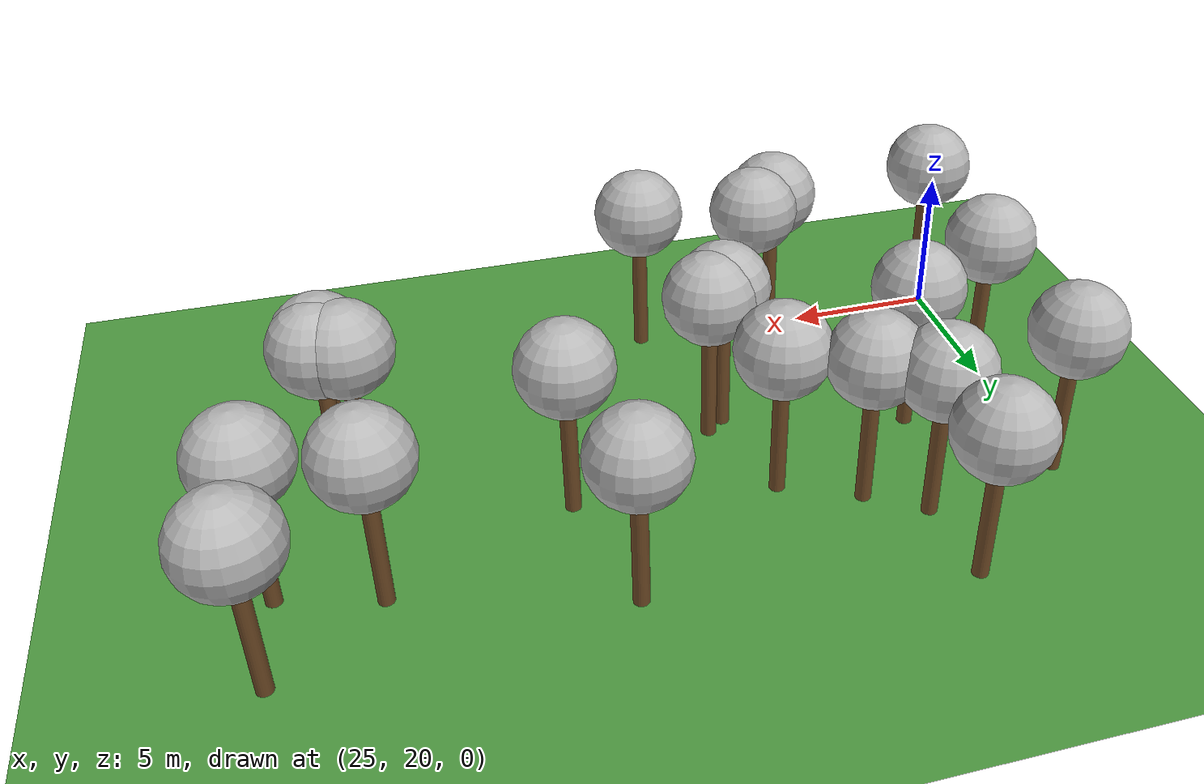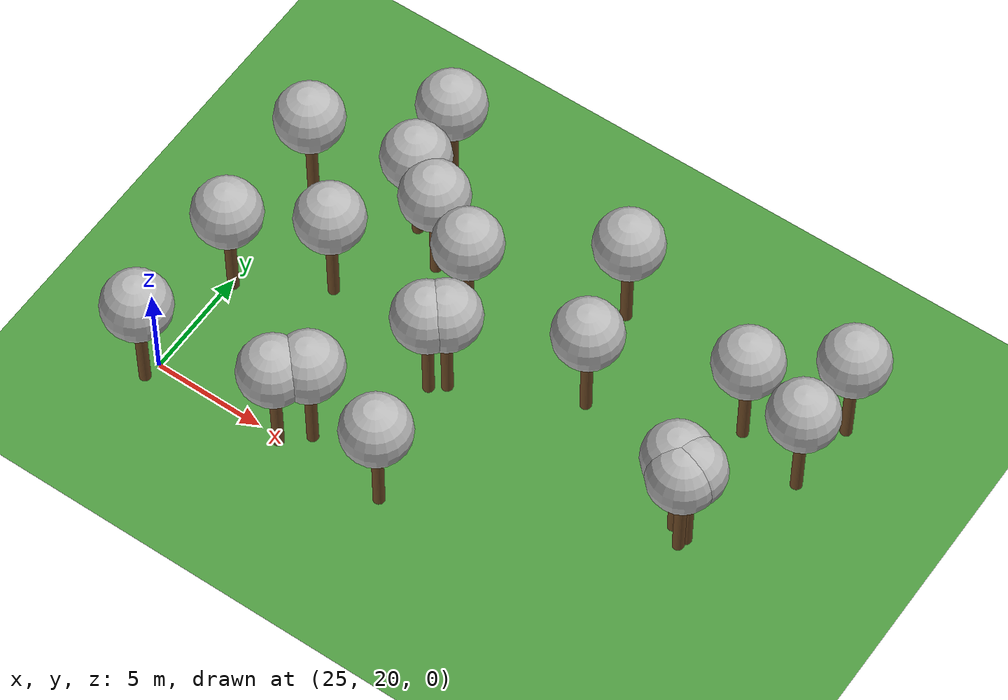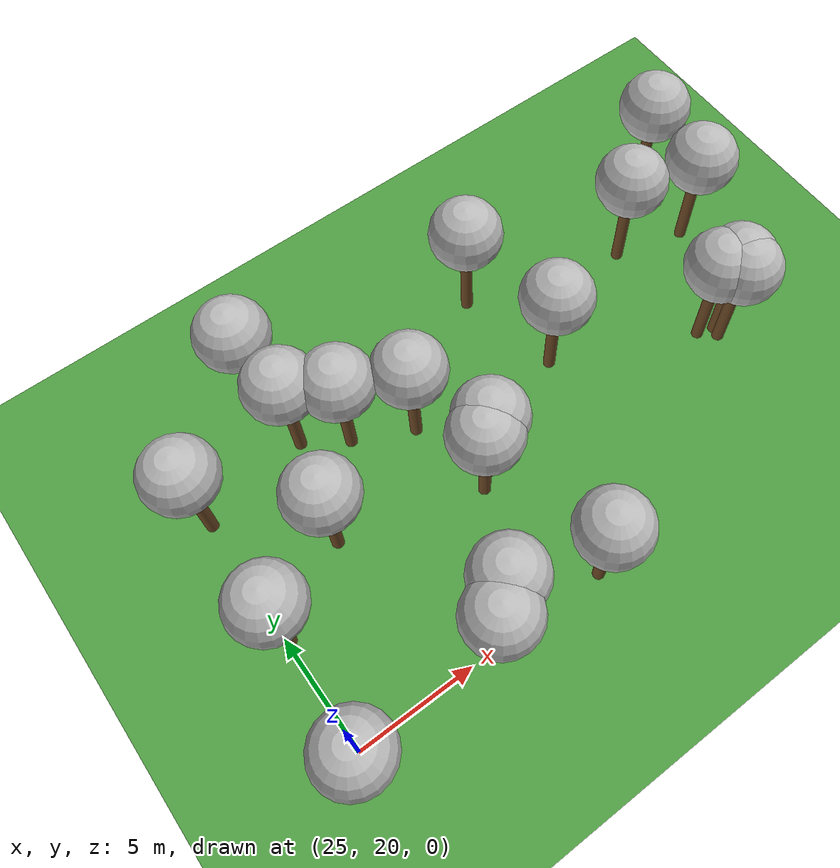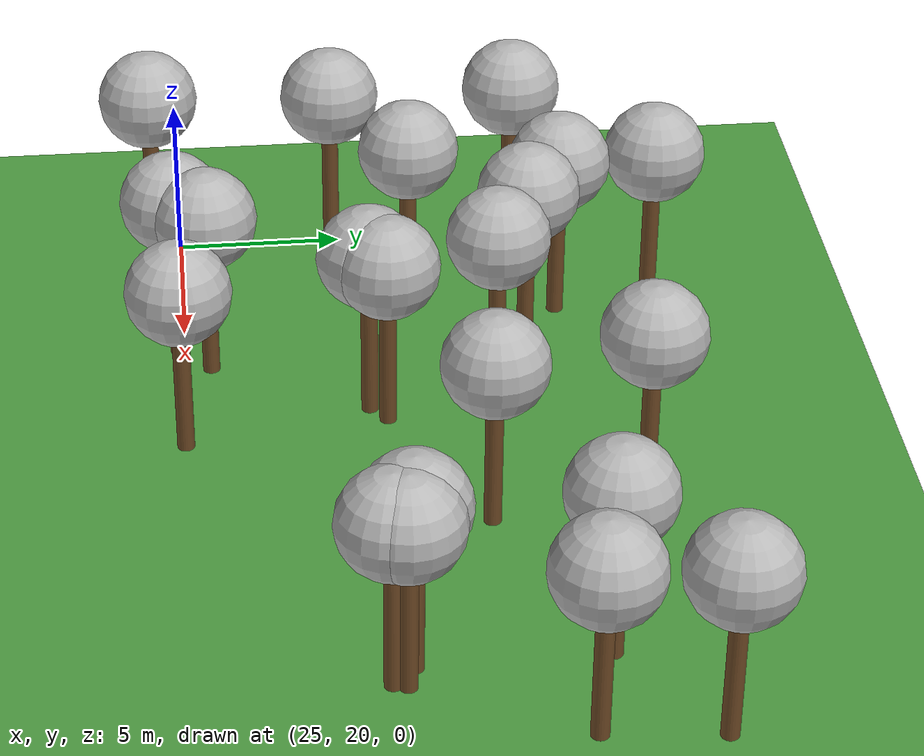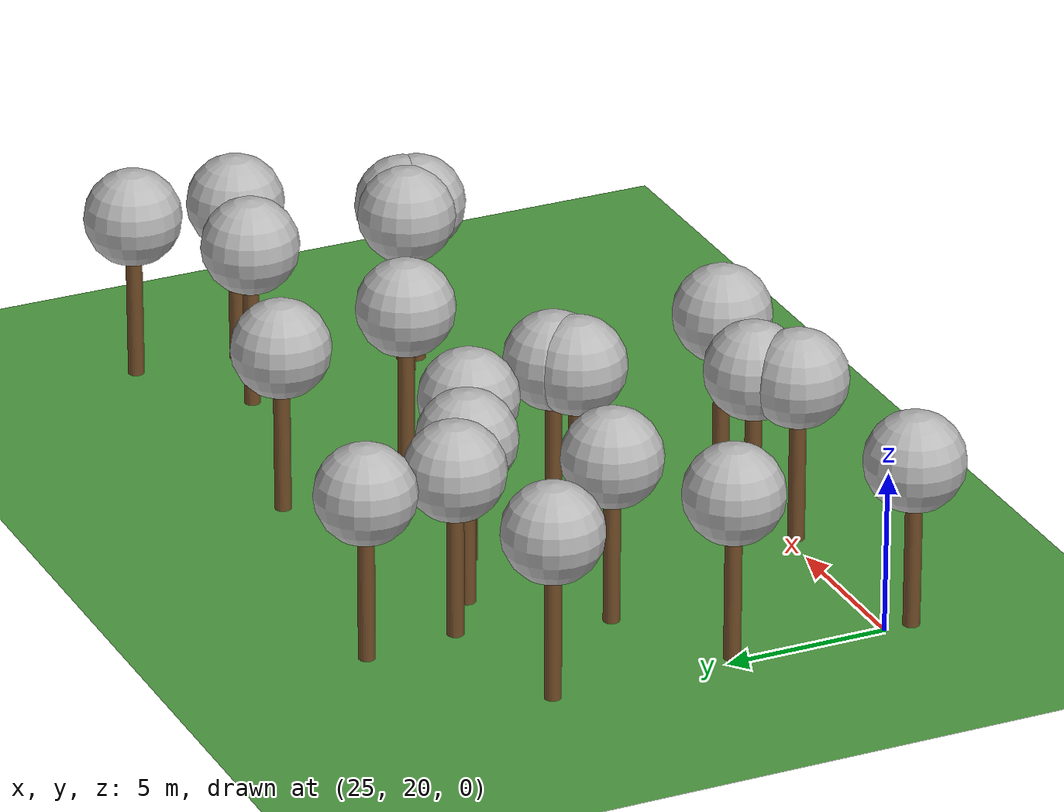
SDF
<sdf version="1.5">
 <world name="default">
  <model name="tree_simple402">
   <static>1</static>
   <link name="link">
    <pose>0 0 0.1 0 -0 0</pose>
    <collision name="collision_trunk">
     <pose>0 0 2 0 -0 0</pose>
     <geometry><cylinder><radius>0.25</radius><length>4</length></cylinder></geometry>
    </collision>
    <collision name="collision_treetop">
     <pose>0 0 5.2 0 -0 0</pose>
     <geometry><sphere><radius>1.5</radius></sphere></geometry>
    </collision>
    <visual name="trunk">
     <pose>0 0 2 0 -0 0</pose>
     <geometry><cylinder><radius>0.25</radius><length>4</length></cylinder></geometry>
     <material>
      <script>
       <uri>model://tree_simple/scripts</uri>
       <uri>model://tree_simple/materials/textures</uri>
       <name>TreeSimple/Trunk</name>
      </script>
     </material>
    </visual>
    <visual name="treetop">
     <pose>0 0 5.2 0 -0 0</pose>
     <geometry><sphere><radius>1.5</radius></sphere></geometry>
     <material>
      <script>
       <uri>model://tree_simple/scripts</uri>
       <uri>model://tree_simple/materials/textures</uri>
       <name>TreeSimple/Treetop</name>
      </script>
     </material>
    </visual>
   </link>
   <pose>46.1530364681 25.5114731744 0 0 -0 0</pose>
  </model>
  <model name="tree_simple387">
   <static>1</static>
   <link name="link">
    <pose>0 0 0.1 0 -0 0</pose>
    <collision name="collision_trunk">
     <pose>0 0 2 0 -0 0</pose>
     <geometry><cylinder><radius>0.25</radius><length>4</length></cylinder></geometry>
    </collision>
    <collision name="collision_treetop">
     <pose>0 0 5.2 0 -0 0</pose>
     <geometry><sphere><radius>1.5</radius></sphere></geometry>
    </collision>
    <visual name="trunk">
     <pose>0 0 2 0 -0 0</pose>
     <geometry><cylinder><radius>0.25</radius><length>4</length></cylinder></geometry>
     <material>
      <script>
       <uri>model://tree_simple/scripts</uri>
       <uri>model://tree_simple/materials/textures</uri>
       <name>TreeSimple/Trunk</name>
      </script>
     </material>
    </visual>
    <visual name="treetop">
     <pose>0 0 5.2 0 -0 0</pose>
     <geometry><sphere><radius>1.5</radius></sphere></geometry>
     <material>
      <script>
       <uri>model://tree_simple/scripts</uri>
       <uri>model://tree_simple/materials/textures</uri>
       <name>TreeSimple/Treetop</name>
      </script>
     </material>
    </visual>
   </link>
   <pose>25.1584680938 24.780687948 0 0 -0 0</pose>
  </model>
  <model name="tree_simple345">
   <static>1</static>
   <link name="link">
    <pose>0 0 0.1 0 -0 0</pose>
    <collision name="collision_trunk">
     <pose>0 0 2 0 -0 0</pose>
     <geometry><cylinder><radius>0.25</radius><length>4</length></cylinder></geometry>
    </collision>
    <collision name="collision_treetop">
     <pose>0 0 5.2 0 -0 0</pose>
     <geometry><sphere><radius>1.5</radius></sphere></geometry>
    </collision>
    <visual name="trunk">
     <pose>0 0 2 0 -0 0</pose>
     <geometry><cylinder><radius>0.25</radius><length>4</length></cylinder></geometry>
     <material>
      <script>
       <uri>model://tree_simple/scripts</uri>
       <uri>model://tree_simple/materials/textures</uri>
       <name>TreeSimple/Trunk</name>
      </script>
     </material>
    </visual>
    <visual name="treetop">
     <pose>0 0 5.2 0 -0 0</pose>
     <geometry><sphere><radius>1.5</radius></sphere></geometry>
     <material>
      <script>
       <uri>model://tree_simple/scripts</uri>
       <uri>model://tree_simple/materials/textures</uri>
       <name>TreeSimple/Treetop</name>
      </script>
     </material>
    </visual>
   </link>
   <pose>28.6628994432 26.9095330542 0 0 -0 0</pose>
  </model>
  <model name="tree_simple335">
   <static>1</static>
   <link name="link">
    <pose>0 0 0.1 0 -0 0</pose>
    <collision name="collision_trunk">
     <pose>0 0 2 0 -0 0</pose>
     <geometry><cylinder><radius>0.25</radius><length>4</length></cylinder></geometry>
    </collision>
    <collision name="collision_treetop">
     <pose>0 0 5.2 0 -0 0</pose>
     <geometry><sphere><radius>1.5</radius></sphere></geometry>
    </collision>
    <visual name="trunk">
     <pose>0 0 2 0 -0 0</pose>
     <geometry><cylinder><radius>0.25</radius><length>4</length></cylinder></geometry>
     <material>
      <script>
       <uri>model://tree_simple/scripts</uri>
       <uri>model://tree_simple/materials/textures</uri>
       <name>TreeSimple/Trunk</name>
      </script>
     </material>
    </visual>
    <visual name="treetop">
     <pose>0 0 5.2 0 -0 0</pose>
     <geometry><sphere><radius>1.5</radius></sphere></geometry>
     <material>
      <script>
       <uri>model://tree_simple/scripts</uri>
       <uri>model://tree_simple/materials/textures</uri>
       <name>TreeSimple/Treetop</name>
      </script>
     </material>
    </visual>
   </link>
   <pose>34.5368026381 25.2759033923 0 0 -0 0</pose>
  </model>
  <model name="tree_simple332">
   <static>1</static>
   <link name="link">
    <pose>0 0 0.1 0 -0 0</pose>
    <collision name="collision_trunk">
     <pose>0 0 2 0 -0 0</pose>
     <geometry><cylinder><radius>0.25</radius><length>4</length></cylinder></geometry>
    </collision>
    <collision name="collision_treetop">
     <pose>0 0 5.2 0 -0 0</pose>
     <geometry><sphere><radius>1.5</radius></sphere></geometry>
    </collision>
    <visual name="trunk">
     <pose>0 0 2 0 -0 0</pose>
     <geometry><cylinder><radius>0.25</radius><length>4</length></cylinder></geometry>
     <material>
      <script>
       <uri>model://tree_simple/scripts</uri>
       <uri>model://tree_simple/materials/textures</uri>
       <name>TreeSimple/Trunk</name>
      </script>
     </material>
    </visual>
    <visual name="treetop">
     <pose>0 0 5.2 0 -0 0</pose>
     <geometry><sphere><radius>1.5</radius></sphere></geometry>
     <material>
      <script>
       <uri>model://tree_simple/scripts</uri>
       <uri>model://tree_simple/materials/textures</uri>
       <name>TreeSimple/Treetop</name>
      </script>
     </material>
    </visual>
   </link>
   <pose>39.1289157524 32.636662066 0 0 -0 0</pose>
  </model>
  <model name="tree_simple313">
   <static>1</static>
   <link name="link">
    <pose>0 0 0.1 0 -0 0</pose>
    <collision name="collision_trunk">
     <pose>0 0 2 0 -0 0</pose>
     <geometry><cylinder><radius>0.25</radius><length>4</length></cylinder></geometry>
    </collision>
    <collision name="collision_treetop">
     <pose>0 0 5.2 0 -0 0</pose>
     <geometry><sphere><radius>1.5</radius></sphere></geometry>
    </collision>
    <visual name="trunk">
     <pose>0 0 2 0 -0 0</pose>
     <geometry><cylinder><radius>0.25</radius><length>4</length></cylinder></geometry>
     <material>
      <script>
       <uri>model://tree_simple/scripts</uri>
       <uri>model://tree_simple/materials/textures</uri>
       <name>TreeSimple/Trunk</name>
      </script>
     </material>
    </visual>
    <visual name="treetop">
     <pose>0 0 5.2 0 -0 0</pose>
     <geometry><sphere><radius>1.5</radius></sphere></geometry>
     <material>
      <script>
       <uri>model://tree_simple/scripts</uri>
       <uri>model://tree_simple/materials/textures</uri>
       <name>TreeSimple/Treetop</name>
      </script>
     </material>
    </visual>
   </link>
   <pose>25.1046881591 30.4098930382 0 0 -0 0</pose>
  </model>
  <model name="tree_simple294">
   <static>1</static>
   <link name="link">
    <pose>0 0 0.1 0 -0 0</pose>
    <collision name="collision_trunk">
     <pose>0 0 2 0 -0 0</pose>
     <geometry><cylinder><radius>0.25</radius><length>4</length></cylinder></geometry>
    </collision>
    <collision name="collision_treetop">
     <pose>0 0 5.2 0 -0 0</pose>
     <geometry><sphere><radius>1.5</radius></sphere></geometry>
    </collision>
    <visual name="trunk">
     <pose>0 0 2 0 -0 0</pose>
     <geometry><cylinder><radius>0.25</radius><length>4</length></cylinder></geometry>
     <material>
      <script>
       <uri>model://tree_simple/scripts</uri>
       <uri>model://tree_simple/materials/textures</uri>
       <name>TreeSimple/Trunk</name>
      </script>
     </material>
    </visual>
    <visual name="treetop">
     <pose>0 0 5.2 0 -0 0</pose>
     <geometry><sphere><radius>1.5</radius></sphere></geometry>
     <material>
      <script>
       <uri>model://tree_simple/scripts</uri>
       <uri>model://tree_simple/materials/textures</uri>
       <name>TreeSimple/Treetop</name>
      </script>
     </material>
    </visual>
   </link>
   <pose>29.4568486027 34.1994676111 0 0 -0 0</pose>
  </model>
  <model name="tree_simple266">
   <static>1</static>
   <link name="link">
    <pose>0 0 0.1 0 -0 0</pose>
    <collision name="collision_trunk">
     <pose>0 0 2 0 -0 0</pose>
     <geometry><cylinder><radius>0.25</radius><length>4</length></cylinder></geometry>
    </collision>
    <collision name="collision_treetop">
     <pose>0 0 5.2 0 -0 0</pose>
     <geometry><sphere><radius>1.5</radius></sphere></geometry>
    </collision>
    <visual name="trunk">
     <pose>0 0 2 0 -0 0</pose>
     <geometry><cylinder><radius>0.25</radius><length>4</length></cylinder></geometry>
     <material>
      <script>
       <uri>model://tree_simple/scripts</uri>
       <uri>model://tree_simple/materials/textures</uri>
       <name>TreeSimple/Trunk</name>
      </script>
     </material>
    </visual>
    <visual name="treetop">
     <pose>0 0 5.2 0 -0 0</pose>
     <geometry><sphere><radius>1.5</radius></sphere></geometry>
     <material>
      <script>
       <uri>model://tree_simple/scripts</uri>
       <uri>model://tree_simple/materials/textures</uri>
       <name>TreeSimple/Treetop</name>
      </script>
     </material>
    </visual>
   </link>
   <pose>24.8758321483 19.2237149963 0 0 -0 0</pose>
  </model>
  <model name="tree_simple265">
   <static>1</static>
   <link name="link">
    <pose>0 0 0.1 0 -0 0</pose>
    <collision name="collision_trunk">
     <pose>0 0 2 0 -0 0</pose>
     <geometry><cylinder><radius>0.25</radius><length>4</length></cylinder></geometry>
    </collision>
    <collision name="collision_treetop">
     <pose>0 0 5.2 0 -0 0</pose>
     <geometry><sphere><radius>1.5</radius></sphere></geometry>
    </collision>
    <visual name="trunk">
     <pose>0 0 2 0 -0 0</pose>
     <geometry><cylinder><radius>0.25</radius><length>4</length></cylinder></geometry>
     <material>
      <script>
       <uri>model://tree_simple/scripts</uri>
       <uri>model://tree_simple/materials/textures</uri>
       <name>TreeSimple/Trunk</name>
      </script>
     </material>
    </visual>
    <visual name="treetop">
     <pose>0 0 5.2 0 -0 0</pose>
     <geometry><sphere><radius>1.5</radius></sphere></geometry>
     <material>
      <script>
       <uri>model://tree_simple/scripts</uri>
       <uri>model://tree_simple/materials/textures</uri>
       <name>TreeSimple/Treetop</name>
      </script>
     </material>
    </visual>
   </link>
   <pose>49.0905511153 29.866561196 0 0 -0 0</pose>
  </model>
  <model name="tree_simple238">
   <static>1</static>
   <link name="link">
    <pose>0 0 0.1 0 -0 0</pose>
    <collision name="collision_trunk">
     <pose>0 0 2 0 -0 0</pose>
     <geometry><cylinder><radius>0.25</radius><length>4</length></cylinder></geometry>
    </collision>
    <collision name="collision_treetop">
     <pose>0 0 5.2 0 -0 0</pose>
     <geometry><sphere><radius>1.5</radius></sphere></geometry>
    </collision>
    <visual name="trunk">
     <pose>0 0 2 0 -0 0</pose>
     <geometry><cylinder><radius>0.25</radius><length>4</length></cylinder></geometry>
     <material>
      <script>
       <uri>model://tree_simple/scripts</uri>
       <uri>model://tree_simple/materials/textures</uri>
       <name>TreeSimple/Trunk</name>
      </script>
     </material>
    </visual>
    <visual name="treetop">
     <pose>0 0 5.2 0 -0 0</pose>
     <geometry><sphere><radius>1.5</radius></sphere></geometry>
     <material>
      <script>
       <uri>model://tree_simple/scripts</uri>
       <uri>model://tree_simple/materials/textures</uri>
       <name>TreeSimple/Treetop</name>
      </script>
     </material>
    </visual>
   </link>
   <pose>46.8869167901 25.2834545483 0 0 -0 0</pose>
  </model>
  <model name="tree_simple230">
   <static>1</static>
   <link name="link">
    <pose>0 0 0.1 0 -0 0</pose>
    <collision name="collision_trunk">
     <pose>0 0 2 0 -0 0</pose>
     <geometry><cylinder><radius>0.25</radius><length>4</length></cylinder></geometry>
    </collision>
    <collision name="collision_treetop">
     <pose>0 0 5.2 0 -0 0</pose>
     <geometry><sphere><radius>1.5</radius></sphere></geometry>
    </collision>
    <visual name="trunk">
     <pose>0 0 2 0 -0 0</pose>
     <geometry><cylinder><radius>0.25</radius><length>4</length></cylinder></geometry>
     <material>
      <script>
       <uri>model://tree_simple/scripts</uri>
       <uri>model://tree_simple/materials/textures</uri>
       <name>TreeSimple/Trunk</name>
      </script>
     </material>
    </visual>
    <visual name="treetop">
     <pose>0 0 5.2 0 -0 0</pose>
     <geometry><sphere><radius>1.5</radius></sphere></geometry>
     <material>
      <script>
       <uri>model://tree_simple/scripts</uri>
       <uri>model://tree_simple/materials/textures</uri>
       <name>TreeSimple/Treetop</name>
      </script>
     </material>
    </visual>
   </link>
   <pose>49.3839982887 33.0886722223 0 0 -0 0</pose>
  </model>
  <model name="tree_simple219">
   <static>1</static>
   <link name="link">
    <pose>0 0 0.1 0 -0 0</pose>
    <collision name="collision_trunk">
     <pose>0 0 2 0 -0 0</pose>
     <geometry><cylinder><radius>0.25</radius><length>4</length></cylinder></geometry>
    </collision>
    <collision name="collision_treetop">
     <pose>0 0 5.2 0 -0 0</pose>
     <geometry><sphere><radius>1.5</radius></sphere></geometry>
    </collision>
    <visual name="trunk">
     <pose>0 0 2 0 -0 0</pose>
     <geometry><cylinder><radius>0.25</radius><length>4</length></cylinder></geometry>
     <material>
      <script>
       <uri>model://tree_simple/scripts</uri>
       <uri>model://tree_simple/materials/textures</uri>
       <name>TreeSimple/Trunk</name>
      </script>
     </material>
    </visual>
    <visual name="treetop">
     <pose>0 0 5.2 0 -0 0</pose>
     <geometry><sphere><radius>1.5</radius></sphere></geometry>
     <material>
      <script>
       <uri>model://tree_simple/scripts</uri>
       <uri>model://tree_simple/materials/textures</uri>
       <name>TreeSimple/Treetop</name>
      </script>
     </material>
    </visual>
   </link>
   <pose>32.089947678 20.7584358719 0 0 -0 0</pose>
  </model>
  <model name="tree_simple216">
   <static>1</static>
   <link name="link">
    <pose>0 0 0.1 0 -0 0</pose>
    <collision name="collision_trunk">
     <pose>0 0 2 0 -0 0</pose>
     <geometry><cylinder><radius>0.25</radius><length>4</length></cylinder></geometry>
    </collision>
    <collision name="collision_treetop">
     <pose>0 0 5.2 0 -0 0</pose>
     <geometry><sphere><radius>1.5</radius></sphere></geometry>
    </collision>
    <visual name="trunk">
     <pose>0 0 2 0 -0 0</pose>
     <geometry><cylinder><radius>0.25</radius><length>4</length></cylinder></geometry>
     <material>
      <script>
       <uri>model://tree_simple/scripts</uri>
       <uri>model://tree_simple/materials/textures</uri>
       <name>TreeSimple/Trunk</name>
      </script>
     </material>
    </visual>
    <visual name="treetop">
     <pose>0 0 5.2 0 -0 0</pose>
     <geometry><sphere><radius>1.5</radius></sphere></geometry>
     <material>
      <script>
       <uri>model://tree_simple/scripts</uri>
       <uri>model://tree_simple/materials/textures</uri>
       <name>TreeSimple/Treetop</name>
      </script>
     </material>
    </visual>
   </link>
   <pose>46.7848412988 24.905742282 0 0 -0 0</pose>
  </model>
  <model name="tree_simple190">
   <static>1</static>
   <link name="link">
    <pose>0 0 0.1 0 -0 0</pose>
    <collision name="collision_trunk">
     <pose>0 0 2 0 -0 0</pose>
     <geometry><cylinder><radius>0.25</radius><length>4</length></cylinder></geometry>
    </collision>
    <collision name="collision_treetop">
     <pose>0 0 5.2 0 -0 0</pose>
     <geometry><sphere><radius>1.5</radius></sphere></geometry>
    </collision>
    <visual name="trunk">
     <pose>0 0 2 0 -0 0</pose>
     <geometry><cylinder><radius>0.25</radius><length>4</length></cylinder></geometry>
     <material>
      <script>
       <uri>model://tree_simple/scripts</uri>
       <uri>model://tree_simple/materials/textures</uri>
       <name>TreeSimple/Trunk</name>
      </script>
     </material>
    </visual>
    <visual name="treetop">
     <pose>0 0 5.2 0 -0 0</pose>
     <geometry><sphere><radius>1.5</radius></sphere></geometry>
     <material>
      <script>
       <uri>model://tree_simple/scripts</uri>
       <uri>model://tree_simple/materials/textures</uri>
       <name>TreeSimple/Treetop</name>
      </script>
     </material>
    </visual>
   </link>
   <pose>33.8682165362 29.0192768916 0 0 -0 0</pose>
  </model>
  <model name="tree_simple188">
   <static>1</static>
   <link name="link">
    <pose>0 0 0.1 0 -0 0</pose>
    <collision name="collision_trunk">
     <pose>0 0 2 0 -0 0</pose>
     <geometry><cylinder><radius>0.25</radius><length>4</length></cylinder></geometry>
    </collision>
    <collision name="collision_treetop">
     <pose>0 0 5.2 0 -0 0</pose>
     <geometry><sphere><radius>1.5</radius></sphere></geometry>
    </collision>
    <visual name="trunk">
     <pose>0 0 2 0 -0 0</pose>
     <geometry><cylinder><radius>0.25</radius><length>4</length></cylinder></geometry>
     <material>
      <script>
       <uri>model://tree_simple/scripts</uri>
       <uri>model://tree_simple/materials/textures</uri>
       <name>TreeSimple/Trunk</name>
      </script>
     </material>
    </visual>
    <visual name="treetop">
     <pose>0 0 5.2 0 -0 0</pose>
     <geometry><sphere><radius>1.5</radius></sphere></geometry>
     <material>
      <script>
       <uri>model://tree_simple/scripts</uri>
       <uri>model://tree_simple/materials/textures</uri>
       <name>TreeSimple/Treetop</name>
      </script>
     </material>
    </visual>
   </link>
   <pose>31.0766060016 19.8231593676 0 0 -0 0</pose>
  </model>
  <model name="tree_simple150">
   <static>1</static>
   <link name="link">
    <pose>0 0 0.1 0 -0 0</pose>
    <collision name="collision_trunk">
     <pose>0 0 2 0 -0 0</pose>
     <geometry><cylinder><radius>0.25</radius><length>4</length></cylinder></geometry>
    </collision>
    <collision name="collision_treetop">
     <pose>0 0 5.2 0 -0 0</pose>
     <geometry><sphere><radius>1.5</radius></sphere></geometry>
    </collision>
    <visual name="trunk">
     <pose>0 0 2 0 -0 0</pose>
     <geometry><cylinder><radius>0.25</radius><length>4</length></cylinder></geometry>
     <material>
      <script>
       <uri>model://tree_simple/scripts</uri>
       <uri>model://tree_simple/materials/textures</uri>
       <name>TreeSimple/Trunk</name>
      </script>
     </material>
    </visual>
    <visual name="treetop">
     <pose>0 0 5.2 0 -0 0</pose>
     <geometry><sphere><radius>1.5</radius></sphere></geometry>
     <material>
      <script>
       <uri>model://tree_simple/scripts</uri>
       <uri>model://tree_simple/materials/textures</uri>
       <name>TreeSimple/Treetop</name>
      </script>
     </material>
    </visual>
   </link>
   <pose>40.1655547132 28.2074332225 0 0 -0 0</pose>
  </model>
  <model name="tree_simple131">
   <static>1</static>
   <link name="link">
    <pose>0 0 0.1 0 -0 0</pose>
    <collision name="collision_trunk">
     <pose>0 0 2 0 -0 0</pose>
     <geometry><cylinder><radius>0.25</radius><length>4</length></cylinder></geometry>
    </collision>
    <collision name="collision_treetop">
     <pose>0 0 5.2 0 -0 0</pose>
     <geometry><sphere><radius>1.5</radius></sphere></geometry>
    </collision>
    <visual name="trunk">
     <pose>0 0 2 0 -0 0</pose>
     <geometry><cylinder><radius>0.25</radius><length>4</length></cylinder></geometry>
     <material>
      <script>
       <uri>model://tree_simple/scripts</uri>
       <uri>model://tree_simple/materials/textures</uri>
       <name>TreeSimple/Trunk</name>
      </script>
     </material>
    </visual>
    <visual name="treetop">
     <pose>0 0 5.2 0 -0 0</pose>
     <geometry><sphere><radius>1.5</radius></sphere></geometry>
     <material>
      <script>
       <uri>model://tree_simple/scripts</uri>
       <uri>model://tree_simple/materials/textures</uri>
       <name>TreeSimple/Treetop</name>
      </script>
     </material>
    </visual>
   </link>
   <pose>46.034478037 30.677477771 0 0 -0 0</pose>
  </model>
  <model name="tree_simple97">
   <static>1</static>
   <link name="link">
    <pose>0 0 0.1 0 -0 0</pose>
    <collision name="collision_trunk">
     <pose>0 0 2 0 -0 0</pose>
     <geometry><cylinder><radius>0.25</radius><length>4</length></cylinder></geometry>
    </collision>
    <collision name="collision_treetop">
     <pose>0 0 5.2 0 -0 0</pose>
     <geometry><sphere><radius>1.5</radius></sphere></geometry>
    </collision>
    <visual name="trunk">
     <pose>0 0 2 0 -0 0</pose>
     <geometry><cylinder><radius>0.25</radius><length>4</length></cylinder></geometry>
     <material>
      <script>
       <uri>model://tree_simple/scripts</uri>
       <uri>model://tree_simple/materials/textures</uri>
       <name>TreeSimple/Trunk</name>
      </script>
     </material>
    </visual>
    <visual name="treetop">
     <pose>0 0 5.2 0 -0 0</pose>
     <geometry><sphere><radius>1.5</radius></sphere></geometry>
     <material>
      <script>
       <uri>model://tree_simple/scripts</uri>
       <uri>model://tree_simple/materials/textures</uri>
       <name>TreeSimple/Treetop</name>
      </script>
     </material>
    </visual>
   </link>
   <pose>31.4551659001 30.1710524081 0 0 -0 0</pose>
  </model>
  <model name="tree_simple47">
   <static>1</static>
   <link name="link">
    <pose>0 0 0.1 0 -0 0</pose>
    <collision name="collision_trunk">
     <pose>0 0 2 0 -0 0</pose>
     <geometry><cylinder><radius>0.25</radius><length>4</length></cylinder></geometry>
    </collision>
    <collision name="collision_treetop">
     <pose>0 0 5.2 0 -0 0</pose>
     <geometry><sphere><radius>1.5</radius></sphere></geometry>
    </collision>
    <visual name="trunk">
     <pose>0 0 2 0 -0 0</pose>
     <geometry><cylinder><radius>0.25</radius><length>4</length></cylinder></geometry>
     <material>
      <script>
       <uri>model://tree_simple/scripts</uri>
       <uri>model://tree_simple/materials/textures</uri>
       <name>TreeSimple/Trunk</name>
      </script>
     </material>
    </visual>
    <visual name="treetop">
     <pose>0 0 5.2 0 -0 0</pose>
     <geometry><sphere><radius>1.5</radius></sphere></geometry>
     <material>
      <script>
       <uri>model://tree_simple/scripts</uri>
       <uri>model://tree_simple/materials/textures</uri>
       <name>TreeSimple/Treetop</name>
      </script>
     </material>
    </visual>
   </link>
   <pose>29.7448798929 31.3110169918 0 0 -0 0</pose>
  </model>
  <model name="tree_simple46">
   <static>1</static>
   <link name="link">
    <pose>0 0 0.1 0 -0 0</pose>
    <collision name="collision_trunk">
     <pose>0 0 2 0 -0 0</pose>
     <geometry><cylinder><radius>0.25</radius><length>4</length></cylinder></geometry>
    </collision>
    <collision name="collision_treetop">
     <pose>0 0 5.2 0 -0 0</pose>
     <geometry><sphere><radius>1.5</radius></sphere></geometry>
    </collision>
    <visual name="trunk">
     <pose>0 0 2 0 -0 0</pose>
     <geometry><cylinder><radius>0.25</radius><length>4</length></cylinder></geometry>
     <material>
      <script>
       <uri>model://tree_simple/scripts</uri>
       <uri>model://tree_simple/materials/textures</uri>
       <name>TreeSimple/Trunk</name>
      </script>
     </material>
    </visual>
    <visual name="treetop">
     <pose>0 0 5.2 0 -0 0</pose>
     <geometry><sphere><radius>1.5</radius></sphere></geometry>
     <material>
      <script>
       <uri>model://tree_simple/scripts</uri>
       <uri>model://tree_simple/materials/textures</uri>
       <name>TreeSimple/Treetop</name>
      </script>
     </material>
    </visual>
   </link>
   <pose>35.9376574388 19.9099598652 0 0 -0 0</pose>
  </model>
  <model name="tree_simple44">
   <static>1</static>
   <link name="link">
    <pose>0 0 0.1 0 -0 0</pose>
    <collision name="collision_trunk">
     <pose>0 0 2 0 -0 0</pose>
     <geometry><cylinder><radius>0.25</radius><length>4</length></cylinder></geometry>
    </collision>
    <collision name="collision_treetop">
     <pose>0 0 5.2 0 -0 0</pose>
     <geometry><sphere><radius>1.5</radius></sphere></geometry>
    </collision>
    <visual name="trunk">
     <pose>0 0 2 0 -0 0</pose>
     <geometry><cylinder><radius>0.25</radius><length>4</length></cylinder></geometry>
     <material>
      <script>
       <uri>model://tree_simple/scripts</uri>
       <uri>model://tree_simple/materials/textures</uri>
       <name>TreeSimple/Trunk</name>
      </script>
     </material>
    </visual>
    <visual name="treetop">
     <pose>0 0 5.2 0 -0 0</pose>
     <geometry><sphere><radius>1.5</radius></sphere></geometry>
     <material>
      <script>
       <uri>model://tree_simple/scripts</uri>
       <uri>model://tree_simple/materials/textures</uri>
       <name>TreeSimple/Treetop</name>
      </script>
     </material>
    </visual>
   </link>
   <pose>35.1253684335 25.7534131059 0 0 -0 0</pose>
  </model>
  <model name="ground_plane">
   <static>true</static>
   <link name="link">
    <collision name="collision">
     <geometry><plane><normal>0 0 1</normal><size>250 250</size></plane></geometry>
     <surface><friction><ode><mu>1</mu><mu2>1</mu2></ode></friction></surface>
    </collision>
    <visual name="grass">
     <cast_shadows>false</cast_shadows>
     <geometry><plane><normal>0 0 1</normal><size>150 250</size></plane></geometry>
     <material>
      <script><uri>file://media/materials/scripts/Gazebo.material</uri><name>Gazebo/Grass</name></script>
     </material>
    </visual>
   </link>
  </model>
 </world>
</sdf>
